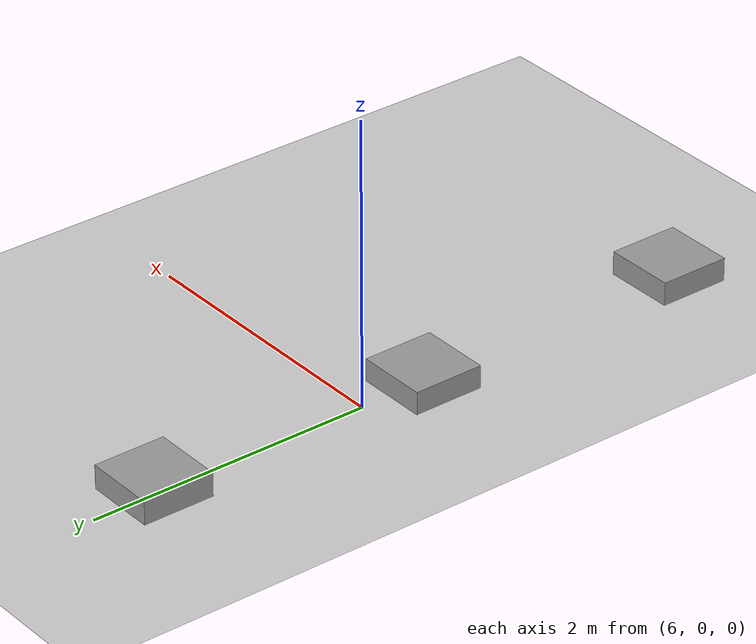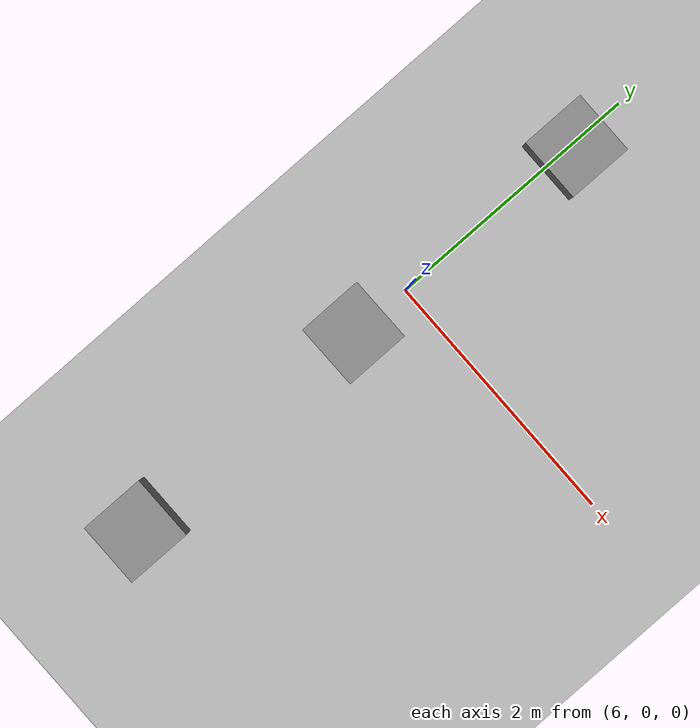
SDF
<sdf version="1.4">
 <world name="default">
  <light name="sun" type="directional">
   <pose>0 0 10 0 -0 0</pose>
   <diffuse>0.8 0.8 0.8 1</diffuse>
   <specular>0.2 0.2 0.2 1</specular>
   <attenuation>
    <range>1000</range>
    <constant>0.9</constant>
    <linear>0.01</linear>
    <quadratic>0.001</quadratic>
   </attenuation>
   <direction>-0.5 0.1 -0.9</direction>
  </light>
  <model name="ground_plane">
   <static>1</static>
   <link name="link">
    <collision name="collision">
     <geometry><plane><normal>0 0 1</normal><size>100 100</size></plane></geometry>
     <surface><friction><ode><mu>100</mu><mu2>50</mu2></ode></friction></surface>
    </collision>
    <visual name="visual">
     <cast_shadows>0</cast_shadows>
     <geometry><plane><normal>0 0 1</normal><size>100 100</size></plane></geometry>
     <material>
      <script><uri>file://media/materials/scripts/gazebo.material</uri><name>Gazebo/Grey</name></script>
     </material>
    </visual>
    <velocity_decay><linear>0</linear><angular>0</angular></velocity_decay>
   </link>
  </model>
  <physics type="ode">
   <max_step_size>0.01</max_step_size>
   <real_time_factor>1</real_time_factor>
   <real_time_update_rate>100</real_time_update_rate>
   <gravity>0 0 -9.8</gravity>
  </physics>
  <scene><ambient>0.4 0.4 0.4 1</ambient><background>0.7 0.7 0.7 1</background><shadows>1</shadows></scene>
  <spherical_coordinates>
   <surface_model>EARTH_WGS84</surface_model>
   <latitude_deg>0</latitude_deg>
   <longitude_deg>0</longitude_deg>
   <elevation>0</elevation>
   <heading_deg>0</heading_deg>
  </spherical_coordinates>
  <model name="unit_box_1">
   <pose>6.03064 1.53754 0.062908 0 -0 1.1e-05</pose>
   <link name="link">
    <inertial>
     <mass>1</mass>
     <inertia><ixx>1</ixx><ixy>0</ixy><ixz>0</ixz><iyy>1</iyy><iyz>0</iyz><izz>1</izz></inertia>
    </inertial>
    <collision name="collision">
     <geometry><box><size>0.347124 0.324998 0.125816</size></box></geometry>
    </collision>
    <visual name="visual">
     <geometry><box><size>0.5 0.5 0.2</size></box></geometry>
     <material>
      <script><uri>file://media/materials/scripts/gazebo.material</uri><name>Gazebo/Grey</name></script>
     </material>
    </visual>
    <velocity_decay><linear>0</linear><angular>0</angular></velocity_decay>
   </link>
   <static>0</static>
  </model>
  <model name="unit_box_2">
   <pose>5.98672 -0.466549 0.055745 6.6e-05 5e-05 0.00376</pose>
   <link name="link">
    <inertial>
     <mass>1</mass>
     <inertia><ixx>1</ixx><ixy>0</ixy><ixz>0</ixz><iyy>1</iyy><iyz>0</iyz><izz>1</izz></inertia>
    </inertial>
    <collision name="collision">
     <geometry><box><size>0.384362 0.402661 0.113205</size></box></geometry>
    </collision>
    <visual name="visual">
     <geometry><box><size>0.5 0.5 0.2</size></box></geometry>
     <material>
      <script><uri>file://media/materials/scripts/gazebo.material</uri><name>Gazebo/Grey</name></script>
     </material>
    </visual>
    <velocity_decay><linear>0</linear><angular>0</angular></velocity_decay>
   </link>
   <static>0</static>
  </model>
  <model name="unit_box_3">
   <pose>6.02493 -2.49739 0.060377 7.7e-05 -1.03398e-25 9e-06</pose>
   <link name="link">
    <inertial>
     <mass>1</mass>
     <inertia><ixx>1</ixx><ixy>0</ixy><ixz>0</ixz><iyy>1</iyy><iyz>0</iyz><izz>1</izz></inertia>
    </inertial>
    <collision name="collision">
     <geometry><box><size>0.349409 0.411918 0.122541</size></box></geometry>
    </collision>
    <visual name="visual">
     <geometry><box><size>0.5 0.5 0.2</size></box></geometry>
     <material>
      <script><uri>file://media/materials/scripts/gazebo.material</uri><name>Gazebo/Grey</name></script>
     </material>
    </visual>
    <velocity_decay><linear>0</linear><angular>0</angular></velocity_decay>
   </link>
   <static>0</static>
  </model>
 </world>
</sdf>
